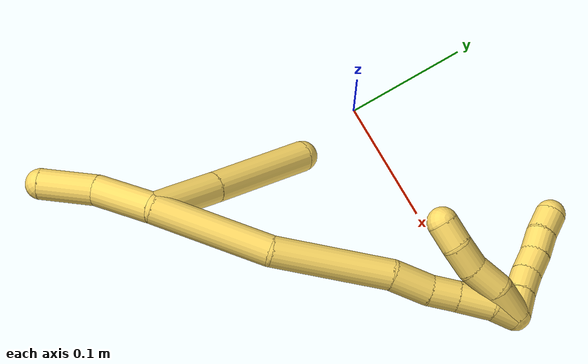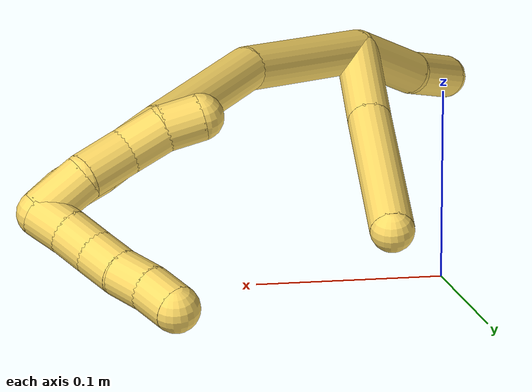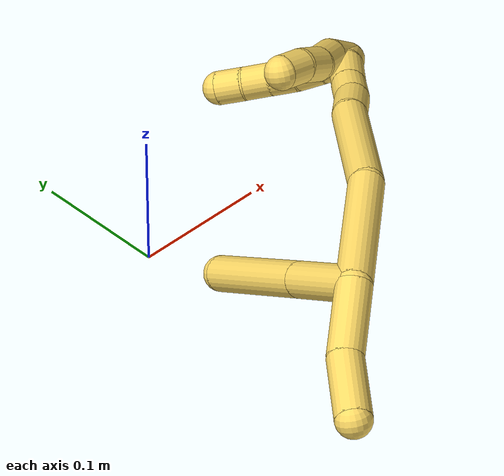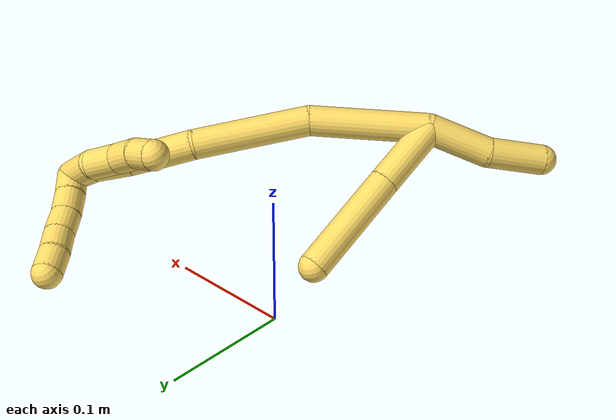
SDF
<sdf version="1.7">
 <world name="default">
  <model name="photoneo_s_sensor">
   <static>1</static>
   <pose>0 0 2 1.57079 1.57079 3.14159</pose>
   <link name="link">
    <inertial><mass>0.1</mass></inertial>
    <sensor name="sensor" type="depth">
     <update_rate>30</update_rate>
     <camera>
      <horizontal_fov>1.22</horizontal_fov>
      <image><width>1920</width><height>1200</height><format>B8G8R8</format></image>
      <clip><near>0.1</near><far>4</far></clip>
      <depth_camera><output>points</output></depth_camera>
     </camera>
     <plugin name="camera_plugin" filename="libgazebo_ros_depth_camera.so">
      <baseline>0.2</baseline>
      <alwaysOn>1</alwaysOn>
      <updateRate>0.0</updateRate>
      <cameraName>camera_ir</cameraName>
      <imageTopicName>/camera/color/image_raw</imageTopicName>
      <cameraInfoTopicName>/camera/color/camera_info</cameraInfoTopicName>
      <depthImageTopicName>/camera/depth/image_raw</depthImageTopicName>
      <depthImageCameraInfoTopicName>/camera/depth/camera_info</depthImageCameraInfoTopicName>
      <pointCloudTopicName>/camera/depth/points</pointCloudTopicName>
      <frameName>fr_optical</frameName>
      <pointCloudCutoff>0.1</pointCloudCutoff>
      <pointCloudCutoffMax>2.0</pointCloudCutoffMax>
      <distortionK1>0</distortionK1>
      <distortionK2>0</distortionK2>
      <distortionK3>0</distortionK3>
      <distortionT1>0</distortionT1>
      <distortionT2>0</distortionT2>
      <CxPrime>0</CxPrime>
      <Cx>0</Cx>
      <Cy>0</Cy>
      <focalLength>0</focalLength>
      <hackBaseline>0</hackBaseline>
     </plugin>
    </sensor>
   </link>
  </model>
  <model name="bin">
   <static>1</static>
   <link name="bottom">
    <collision name="collision-bottom">
     <pose>0 0 -0.01 0 -0 0</pose>
     <geometry><box><size>0.8 0.6 0.02</size></box></geometry>
     <surface>
      <friction><ode><mu>100</mu><mu2>100</mu2></ode></friction>
      <contact><collide_bitmask>65535</collide_bitmask></contact>
     </surface>
    </collision>
   </link>
   <link name="west_wall">
    <collision name="collision-west_wall">
     <pose>-0.41 0 0.1 0 -0 0</pose>
     <geometry><box><size>0.02 0.6 0.2</size></box></geometry>
     <surface>
      <friction><ode><mu>100</mu><mu2>100</mu2></ode></friction>
      <contact><collide_bitmask>65535</collide_bitmask></contact>
     </surface>
    </collision>
   </link>
   <link name="east_wall">
    <collision name="collision-east_wall">
     <pose>0.41 0 0.1 0 -0 0</pose>
     <geometry><box><size>0.02 0.6 0.2</size></box></geometry>
     <surface>
      <friction><ode><mu>100</mu><mu2>100</mu2></ode></friction>
      <contact><collide_bitmask>65535</collide_bitmask></contact>
     </surface>
    </collision>
   </link>
   <link name="south_wall">
    <collision name="collision-south_wall">
     <pose>0 -0.31 0.1 0 -0 0</pose>
     <geometry><box><size>0.8 0.02 0.2</size></box></geometry>
     <surface>
      <friction><ode><mu>100</mu><mu2>100</mu2></ode></friction>
      <contact><collide_bitmask>65535</collide_bitmask></contact>
     </surface>
    </collision>
   </link>
   <link name="north_wall">
    <collision name="collision-north_wall">
     <pose>0 0.31 0.1 0 -0 0</pose>
     <geometry><box><size>0.8 0.02 0.2</size></box></geometry>
     <surface>
      <friction><ode><mu>100</mu><mu2>100</mu2></ode></friction>
      <contact><collide_bitmask>65535</collide_bitmask></contact>
     </surface>
    </collision>
   </link>
  </model>
  <model name="5">
   <static>0</static>
   <link name="5">
    <collision name="collision-cylinder-e_1_2_8">
     <pose>0.00364 0.029299 -0.004065 -1.70866 0.122451 -0.140558</pose>
     <geometry><cylinder><radius>0.0125</radius><length>0.059606</length></cylinder></geometry>
     <surface>
      <friction><ode><mu>1.16</mu><mu2>1.16</mu2><slip1>0</slip1><slip2>0</slip2></ode></friction>
      <contact><ode><kp>1e+06</kp><kd>1</kd><max_vel>0</max_vel><min_depth>0.001</min_depth></ode></contact>
     </surface>
    </collision>
    <visual name="visual-cylinder-e_1_2_8">
     <pose>0.00364 0.029299 -0.004065 -1.70866 0.122451 -0.140558</pose>
     <geometry><cylinder><radius>0.0125</radius><length>0.059606</length></cylinder></geometry>
     <material><ambient>1 0.858824 0.4 1</ambient></material>
    </visual>
    <collision name="collision-cylinder-e_2_8_6">
     <pose>0.012185 0.103123 -0.014154 -1.70526 0.108718 -0.124377</pose>
     <geometry><cylinder><radius>0.0125</radius><length>0.090394</length></cylinder></geometry>
     <surface>
      <friction><ode><mu>1.16</mu><mu2>1.16</mu2><slip1>0</slip1><slip2>0</slip2></ode></friction>
      <contact><ode><kp>1e+06</kp><kd>1</kd><max_vel>0</max_vel><min_depth>0.001</min_depth></ode></contact>
     </surface>
    </collision>
    <visual name="visual-cylinder-e_2_8_6">
     <pose>0.012185 0.103123 -0.014154 -1.70526 0.108718 -0.124377</pose>
     <geometry><cylinder><radius>0.0125</radius><length>0.090394</length></cylinder></geometry>
     <material><ambient>1 0.858824 0.4 1</ambient></material>
    </visual>
    <collision name="collision-cylinder-e_1_2_9">
     <pose>-0.01816 -0.00926 -0.016632 2.63358 -0.761873 -1.99134</pose>
     <geometry><cylinder><radius>0.0125</radius><length>0.052617</length></cylinder></geometry>
     <surface>
      <friction><ode><mu>1.16</mu><mu2>1.16</mu2><slip1>0</slip1><slip2>0</slip2></ode></friction>
      <contact><ode><kp>1e+06</kp><kd>1</kd><max_vel>0</max_vel><min_depth>0.001</min_depth></ode></contact>
     </surface>
    </collision>
    <visual name="visual-cylinder-e_1_2_9">
     <pose>-0.01816 -0.00926 -0.016632 2.63358 -0.761873 -1.99134</pose>
     <geometry><cylinder><radius>0.0125</radius><length>0.052617</length></cylinder></geometry>
     <material><ambient>1 0.858824 0.4 1</ambient></material>
    </visual>
    <collision name="collision-cylinder-e_2_9_5">
     <pose>-0.050423 -0.032531 -0.04615 2.31443 -0.637584 -1.28956</pose>
     <geometry><cylinder><radius>0.0125</radius><length>0.047383</length></cylinder></geometry>
     <surface>
      <friction><ode><mu>1.16</mu><mu2>1.16</mu2><slip1>0</slip1><slip2>0</slip2></ode></friction>
      <contact><ode><kp>1e+06</kp><kd>1</kd><max_vel>0</max_vel><min_depth>0.001</min_depth></ode></contact>
     </surface>
    </collision>
    <visual name="visual-cylinder-e_2_9_5">
     <pose>-0.050423 -0.032531 -0.04615 2.31443 -0.637584 -1.28956</pose>
     <geometry><cylinder><radius>0.0125</radius><length>0.047383</length></cylinder></geometry>
     <material><ambient>1 0.858824 0.4 1</ambient></material>
    </visual>
    <collision name="collision-cylinder-e_1_2_10">
     <pose>0.037647 0.025899 0.0173 -0.98188 0.879625 -0.492883</pose>
     <geometry><cylinder><radius>0.0125</radius><length>0.097721</length></cylinder></geometry>
     <surface>
      <friction><ode><mu>1.16</mu><mu2>1.16</mu2><slip1>0</slip1><slip2>0</slip2></ode></friction>
      <contact><ode><kp>1e+06</kp><kd>1</kd><max_vel>0</max_vel><min_depth>0.001</min_depth></ode></contact>
     </surface>
    </collision>
    <visual name="visual-cylinder-e_1_2_10">
     <pose>0.037647 0.025899 0.0173 -0.98188 0.879625 -0.492883</pose>
     <geometry><cylinder><radius>0.0125</radius><length>0.097721</length></cylinder></geometry>
     <material><ambient>1 0.858824 0.4 1</ambient></material>
    </visual>
    <collision name="collision-cylinder-e_2_10_11">
     <pose>0.106613 0.087031 0.044126 -1.30674 0.709179 -0.552376</pose>
     <geometry><cylinder><radius>0.0125</radius><length>0.096188</length></cylinder></geometry>
     <surface>
      <friction><ode><mu>1.16</mu><mu2>1.16</mu2><slip1>0</slip1><slip2>0</slip2></ode></friction>
      <contact><ode><kp>1e+06</kp><kd>1</kd><max_vel>0</max_vel><min_depth>0.001</min_depth></ode></contact>
     </surface>
    </collision>
    <visual name="visual-cylinder-e_2_10_11">
     <pose>0.106613 0.087031 0.044126 -1.30674 0.709179 -0.552376</pose>
     <geometry><cylinder><radius>0.0125</radius><length>0.096188</length></cylinder></geometry>
     <material><ambient>1 0.858824 0.4 1</ambient></material>
    </visual>
    <collision name="collision-cylinder-e_3_11_12">
     <pose>0.150362 0.132812 0.054134 -1.52516 0.866599 -0.832321</pose>
     <geometry><cylinder><radius>0.0125</radius><length>0.032616</length></cylinder></geometry>
     <surface>
      <friction><ode><mu>1.16</mu><mu2>1.16</mu2><slip1>0</slip1><slip2>0</slip2></ode></friction>
      <contact><ode><kp>1e+06</kp><kd>1</kd><max_vel>0</max_vel><min_depth>0.001</min_depth></ode></contact>
     </surface>
    </collision>
    <visual name="visual-cylinder-e_3_11_12">
     <pose>0.150362 0.132812 0.054134 -1.52516 0.866599 -0.832321</pose>
     <geometry><cylinder><radius>0.0125</radius><length>0.032616</length></cylinder></geometry>
     <material><ambient>1 0.858824 0.4 1</ambient></material>
    </visual>
    <collision name="collision-cylinder-e_4_12_13">
     <pose>0.170458 0.151872 0.056326 -1.3725 0.723412 -0.601008</pose>
     <geometry><cylinder><radius>0.0125</radius><length>0.023168</length></cylinder></geometry>
     <surface>
      <friction><ode><mu>1.16</mu><mu2>1.16</mu2><slip1>0</slip1><slip2>0</slip2></ode></friction>
      <contact><ode><kp>1e+06</kp><kd>1</kd><max_vel>0</max_vel><min_depth>0.001</min_depth></ode></contact>
     </surface>
    </collision>
    <visual name="visual-cylinder-e_4_12_13">
     <pose>0.170458 0.151872 0.056326 -1.3725 0.723412 -0.601008</pose>
     <geometry><cylinder><radius>0.0125</radius><length>0.023168</length></cylinder></geometry>
     <material><ambient>1 0.858824 0.4 1</ambient></material>
    </visual>
    <collision name="collision-cylinder-e_5_13_14">
     <pose>0.188261 0.170692 0.060974 -1.29317 0.757472 -0.583617</pose>
     <geometry><cylinder><radius>0.0125</radius><length>0.029502</length></cylinder></geometry>
     <surface>
      <friction><ode><mu>1.16</mu><mu2>1.16</mu2><slip1>0</slip1><slip2>0</slip2></ode></friction>
      <contact><ode><kp>1e+06</kp><kd>1</kd><max_vel>0</max_vel><min_depth>0.001</min_depth></ode></contact>
     </surface>
    </collision>
    <visual name="visual-cylinder-e_5_13_14">
     <pose>0.188261 0.170692 0.060974 -1.29317 0.757472 -0.583617</pose>
     <geometry><cylinder><radius>0.0125</radius><length>0.029502</length></cylinder></geometry>
     <material><ambient>1 0.858824 0.4 1</ambient></material>
    </visual>
    <collision name="collision-cylinder-e_6_14_1">
     <pose>0.206168 0.187854 0.063002 -1.7027 0.843673 -0.946798</pose>
     <geometry><cylinder><radius>0.0125</radius><length>0.020805</length></cylinder></geometry>
     <surface>
      <friction><ode><mu>1.16</mu><mu2>1.16</mu2><slip1>0</slip1><slip2>0</slip2></ode></friction>
      <contact><ode><kp>1e+06</kp><kd>1</kd><max_vel>0</max_vel><min_depth>0.001</min_depth></ode></contact>
     </surface>
    </collision>
    <visual name="visual-cylinder-e_6_14_1">
     <pose>0.206168 0.187854 0.063002 -1.7027 0.843673 -0.946798</pose>
     <geometry><cylinder><radius>0.0125</radius><length>0.020805</length></cylinder></geometry>
     <material><ambient>1 0.858824 0.4 1</ambient></material>
    </visual>
    <collision name="collision-cylinder-e_1_1_15">
     <pose>0.207993 0.202565 0.060386 -1.78472 -0.636853 0.776393</pose>
     <geometry><cylinder><radius>0.0125</radius><length>0.02</length></cylinder></geometry>
     <surface>
      <friction><ode><mu>1.16</mu><mu2>1.16</mu2><slip1>0</slip1><slip2>0</slip2></ode></friction>
      <contact><ode><kp>1e+06</kp><kd>1</kd><max_vel>0</max_vel><min_depth>0.001</min_depth></ode></contact>
     </surface>
    </collision>
    <visual name="visual-cylinder-e_1_1_15">
     <pose>0.207993 0.202565 0.060386 -1.78472 -0.636853 0.776393</pose>
     <geometry><cylinder><radius>0.0125</radius><length>0.02</length></cylinder></geometry>
     <material><ambient>1 0.858824 0.4 1</ambient></material>
    </visual>
    <collision name="collision-cylinder-e_2_15_16">
     <pose>0.19675 0.218731 0.056977 -1.77277 -0.558208 0.675509</pose>
     <geometry><cylinder><radius>0.0125</radius><length>0.02</length></cylinder></geometry>
     <surface>
      <friction><ode><mu>1.16</mu><mu2>1.16</mu2><slip1>0</slip1><slip2>0</slip2></ode></friction>
      <contact><ode><kp>1e+06</kp><kd>1</kd><max_vel>0</max_vel><min_depth>0.001</min_depth></ode></contact>
     </surface>
    </collision>
    <visual name="visual-cylinder-e_2_15_16">
     <pose>0.19675 0.218731 0.056977 -1.77277 -0.558208 0.675509</pose>
     <geometry><cylinder><radius>0.0125</radius><length>0.02</length></cylinder></geometry>
     <material><ambient>1 0.858824 0.4 1</ambient></material>
    </visual>
    <collision name="collision-cylinder-e_3_16_17">
     <pose>0.186614 0.235759 0.054518 -1.65755 -0.505117 0.548778</pose>
     <geometry><cylinder><radius>0.0125</radius><length>0.02</length></cylinder></geometry>
     <surface>
      <friction><ode><mu>1.16</mu><mu2>1.16</mu2><slip1>0</slip1><slip2>0</slip2></ode></friction>
      <contact><ode><kp>1e+06</kp><kd>1</kd><max_vel>0</max_vel><min_depth>0.001</min_depth></ode></contact>
     </surface>
    </collision>
    <visual name="visual-cylinder-e_3_16_17">
     <pose>0.186614 0.235759 0.054518 -1.65755 -0.505117 0.548778</pose>
     <geometry><cylinder><radius>0.0125</radius><length>0.02</length></cylinder></geometry>
     <material><ambient>1 0.858824 0.4 1</ambient></material>
    </visual>
    <collision name="collision-cylinder-e_4_17_18">
     <pose>0.175846 0.252518 0.05333 -1.62417 -0.634687 0.667032</pose>
     <geometry><cylinder><radius>0.0125</radius><length>0.02</length></cylinder></geometry>
     <surface>
      <friction><ode><mu>1.16</mu><mu2>1.16</mu2><slip1>0</slip1><slip2>0</slip2></ode></friction>
      <contact><ode><kp>1e+06</kp><kd>1</kd><max_vel>0</max_vel><min_depth>0.001</min_depth></ode></contact>
     </surface>
    </collision>
    <visual name="visual-cylinder-e_4_17_18">
     <pose>0.175846 0.252518 0.05333 -1.62417 -0.634687 0.667032</pose>
     <geometry><cylinder><radius>0.0125</radius><length>0.02</length></cylinder></geometry>
     <material><ambient>1 0.858824 0.4 1</ambient></material>
    </visual>
    <collision name="collision-cylinder-e_5_18_4">
     <pose>0.165166 0.269329 0.052182 -1.65254 -0.495018 0.535319</pose>
     <geometry><cylinder><radius>0.0125</radius><length>0.02</length></cylinder></geometry>
     <surface>
      <friction><ode><mu>1.16</mu><mu2>1.16</mu2><slip1>0</slip1><slip2>0</slip2></ode></friction>
      <contact><ode><kp>1e+06</kp><kd>1</kd><max_vel>0</max_vel><min_depth>0.001</min_depth></ode></contact>
     </surface>
    </collision>
    <visual name="visual-cylinder-e_5_18_4">
     <pose>0.165166 0.269329 0.052182 -1.65254 -0.495018 0.535319</pose>
     <geometry><cylinder><radius>0.0125</radius><length>0.02</length></cylinder></geometry>
     <material><ambient>1 0.858824 0.4 1</ambient></material>
    </visual>
    <collision name="collision-cylinder-e_1_1_19">
     <pose>0.201378 0.190311 0.068101 0.631789 -1.03573 -0.368204</pose>
     <geometry><cylinder><radius>0.0125</radius><length>0.029206</length></cylinder></geometry>
     <surface>
      <friction><ode><mu>1.16</mu><mu2>1.16</mu2><slip1>0</slip1><slip2>0</slip2></ode></friction>
      <contact><ode><kp>1e+06</kp><kd>1</kd><max_vel>0</max_vel><min_depth>0.001</min_depth></ode></contact>
     </surface>
    </collision>
    <visual name="visual-cylinder-e_1_1_19">
     <pose>0.201378 0.190311 0.068101 0.631789 -1.03573 -0.368204</pose>
     <geometry><cylinder><radius>0.0125</radius><length>0.029206</length></cylinder></geometry>
     <material><ambient>1 0.858824 0.4 1</ambient></material>
    </visual>
    <collision name="collision-cylinder-e_2_19_20">
     <pose>0.176941 0.179914 0.075699 1.31185 -1.08925 -0.872433</pose>
     <geometry><cylinder><radius>0.0125</radius><length>0.026797</length></cylinder></geometry>
     <surface>
      <friction><ode><mu>1.16</mu><mu2>1.16</mu2><slip1>0</slip1><slip2>0</slip2></ode></friction>
      <contact><ode><kp>1e+06</kp><kd>1</kd><max_vel>0</max_vel><min_depth>0.001</min_depth></ode></contact>
     </surface>
    </collision>
    <visual name="visual-cylinder-e_2_19_20">
     <pose>0.176941 0.179914 0.075699 1.31185 -1.08925 -0.872433</pose>
     <geometry><cylinder><radius>0.0125</radius><length>0.026797</length></cylinder></geometry>
     <material><ambient>1 0.858824 0.4 1</ambient></material>
    </visual>
    <collision name="collision-cylinder-e_3_20_21">
     <pose>0.154299 0.17107 0.080644 0.70332 -1.18288 -0.483238</pose>
     <geometry><cylinder><radius>0.0125</radius><length>0.023264</length></cylinder></geometry>
     <surface>
      <friction><ode><mu>1.16</mu><mu2>1.16</mu2><slip1>0</slip1><slip2>0</slip2></ode></friction>
      <contact><ode><kp>1e+06</kp><kd>1</kd><max_vel>0</max_vel><min_depth>0.001</min_depth></ode></contact>
     </surface>
    </collision>
    <visual name="visual-cylinder-e_3_20_21">
     <pose>0.154299 0.17107 0.080644 0.70332 -1.18288 -0.483238</pose>
     <geometry><cylinder><radius>0.0125</radius><length>0.023264</length></cylinder></geometry>
     <material><ambient>1 0.858824 0.4 1</ambient></material>
    </visual>
    <collision name="collision-cylinder-e_4_21_3">
     <pose>0.133278 0.167227 0.085156 0.711806 -1.42293 -0.620244</pose>
     <geometry><cylinder><radius>0.0125</radius><length>0.020733</length></cylinder></geometry>
     <surface>
      <friction><ode><mu>1.16</mu><mu2>1.16</mu2><slip1>0</slip1><slip2>0</slip2></ode></friction>
      <contact><ode><kp>1e+06</kp><kd>1</kd><max_vel>0</max_vel><min_depth>0.001</min_depth></ode></contact>
     </surface>
    </collision>
    <visual name="visual-cylinder-e_4_21_3">
     <pose>0.133278 0.167227 0.085156 0.711806 -1.42293 -0.620244</pose>
     <geometry><cylinder><radius>0.0125</radius><length>0.020733</length></cylinder></geometry>
     <material><ambient>1 0.858824 0.4 1</ambient></material>
    </visual>
    <collision name="collision-sphere-3">
     <pose>0.123024 0.166229 0.086313 0 -0 0</pose>
     <geometry><sphere><radius>0.0125</radius></sphere></geometry>
     <surface>
      <friction><ode><mu>1.16</mu><mu2>1.16</mu2><slip1>0</slip1><slip2>0</slip2></ode></friction>
      <contact><ode><kp>1e+06</kp><kd>1</kd><max_vel>0</max_vel><min_depth>0.001</min_depth></ode></contact>
     </surface>
    </collision>
    <visual name="visual-sphere-3">
     <pose>0.123024 0.166229 0.086313 0 -0 0</pose>
     <geometry><sphere><radius>0.0125</radius></sphere></geometry>
     <material><ambient>1 0.858824 0.4 1</ambient></material>
    </visual>
    <collision name="collision-sphere-21">
     <pose>0.143531 0.168225 0.084 0 -0 0</pose>
     <geometry><sphere><radius>0.0125</radius></sphere></geometry>
     <surface>
      <friction><ode><mu>1.16</mu><mu2>1.16</mu2><slip1>0</slip1><slip2>0</slip2></ode></friction>
      <contact><ode><kp>1e+06</kp><kd>1</kd><max_vel>0</max_vel><min_depth>0.001</min_depth></ode></contact>
     </surface>
    </collision>
    <visual name="visual-sphere-21">
     <pose>0.143531 0.168225 0.084 0 -0 0</pose>
     <geometry><sphere><radius>0.0125</radius></sphere></geometry>
     <material><ambient>1 0.858824 0.4 1</ambient></material>
    </visual>
    <collision name="collision-sphere-20">
     <pose>0.165066 0.173916 0.077288 0 -0 0</pose>
     <geometry><sphere><radius>0.0125</radius></sphere></geometry>
     <surface>
      <friction><ode><mu>1.16</mu><mu2>1.16</mu2><slip1>0</slip1><slip2>0</slip2></ode></friction>
      <contact><ode><kp>1e+06</kp><kd>1</kd><max_vel>0</max_vel><min_depth>0.001</min_depth></ode></contact>
     </surface>
    </collision>
    <visual name="visual-sphere-20">
     <pose>0.165066 0.173916 0.077288 0 -0 0</pose>
     <geometry><sphere><radius>0.0125</radius></sphere></geometry>
     <material><ambient>1 0.858824 0.4 1</ambient></material>
    </visual>
    <collision name="collision-sphere-19">
     <pose>0.188815 0.185913 0.07411 0 -0 0</pose>
     <geometry><sphere><radius>0.0125</radius></sphere></geometry>
     <surface>
      <friction><ode><mu>1.16</mu><mu2>1.16</mu2><slip1>0</slip1><slip2>0</slip2></ode></friction>
      <contact><ode><kp>1e+06</kp><kd>1</kd><max_vel>0</max_vel><min_depth>0.001</min_depth></ode></contact>
     </surface>
    </collision>
    <visual name="visual-sphere-19">
     <pose>0.188815 0.185913 0.07411 0 -0 0</pose>
     <geometry><sphere><radius>0.0125</radius></sphere></geometry>
     <material><ambient>1 0.858824 0.4 1</ambient></material>
    </visual>
    <collision name="collision-sphere-10">
     <pose>0.075294 0.051798 0.0346 0 -0 0</pose>
     <geometry><sphere><radius>0.0125</radius></sphere></geometry>
     <surface>
      <friction><ode><mu>1.16</mu><mu2>1.16</mu2><slip1>0</slip1><slip2>0</slip2></ode></friction>
      <contact><ode><kp>1e+06</kp><kd>1</kd><max_vel>0</max_vel><min_depth>0.001</min_depth></ode></contact>
     </surface>
    </collision>
    <visual name="visual-sphere-10">
     <pose>0.075294 0.051798 0.0346 0 -0 0</pose>
     <geometry><sphere><radius>0.0125</radius></sphere></geometry>
     <material><ambient>1 0.858824 0.4 1</ambient></material>
    </visual>
    <collision name="collision-sphere-5">
     <pose>-0.064525 -0.046542 -0.059038 0 -0 0</pose>
     <geometry><sphere><radius>0.0125</radius></sphere></geometry>
     <surface>
      <friction><ode><mu>1.16</mu><mu2>1.16</mu2><slip1>0</slip1><slip2>0</slip2></ode></friction>
      <contact><ode><kp>1e+06</kp><kd>1</kd><max_vel>0</max_vel><min_depth>0.001</min_depth></ode></contact>
     </surface>
    </collision>
    <visual name="visual-sphere-5">
     <pose>-0.064525 -0.046542 -0.059038 0 -0 0</pose>
     <geometry><sphere><radius>0.0125</radius></sphere></geometry>
     <material><ambient>1 0.858824 0.4 1</ambient></material>
    </visual>
    <collision name="collision-sphere-6">
     <pose>0.017089 0.147648 -0.020177 0 -0 0</pose>
     <geometry><sphere><radius>0.0125</radius></sphere></geometry>
     <surface>
      <friction><ode><mu>1.16</mu><mu2>1.16</mu2><slip1>0</slip1><slip2>0</slip2></ode></friction>
      <contact><ode><kp>1e+06</kp><kd>1</kd><max_vel>0</max_vel><min_depth>0.001</min_depth></ode></contact>
     </surface>
    </collision>
    <visual name="visual-sphere-6">
     <pose>0.017089 0.147648 -0.020177 0 -0 0</pose>
     <geometry><sphere><radius>0.0125</radius></sphere></geometry>
     <material><ambient>1 0.858824 0.4 1</ambient></material>
    </visual>
    <collision name="collision-sphere-9">
     <pose>-0.036321 -0.018519 -0.033263 0 -0 0</pose>
     <geometry><sphere><radius>0.0125</radius></sphere></geometry>
     <surface>
      <friction><ode><mu>1.16</mu><mu2>1.16</mu2><slip1>0</slip1><slip2>0</slip2></ode></friction>
      <contact><ode><kp>1e+06</kp><kd>1</kd><max_vel>0</max_vel><min_depth>0.001</min_depth></ode></contact>
     </surface>
    </collision>
    <visual name="visual-sphere-9">
     <pose>-0.036321 -0.018519 -0.033263 0 -0 0</pose>
     <geometry><sphere><radius>0.0125</radius></sphere></geometry>
     <material><ambient>1 0.858824 0.4 1</ambient></material>
    </visual>
    <collision name="collision-sphere-2">
     <geometry><sphere><radius>0.0125</radius></sphere></geometry>
     <surface>
      <friction><ode><mu>1.16</mu><mu2>1.16</mu2><slip1>0</slip1><slip2>0</slip2></ode></friction>
      <contact><ode><kp>1e+06</kp><kd>1</kd><max_vel>0</max_vel><min_depth>0.001</min_depth></ode></contact>
     </surface>
    </collision>
    <visual name="visual-sphere-2">
     <geometry><sphere><radius>0.0125</radius></sphere></geometry>
     <material><ambient>1 0.858824 0.4 1</ambient></material>
    </visual>
    <collision name="collision-sphere-8">
     <pose>0.007281 0.058599 -0.00813 0 -0 0</pose>
     <geometry><sphere><radius>0.0125</radius></sphere></geometry>
     <surface>
      <friction><ode><mu>1.16</mu><mu2>1.16</mu2><slip1>0</slip1><slip2>0</slip2></ode></friction>
      <contact><ode><kp>1e+06</kp><kd>1</kd><max_vel>0</max_vel><min_depth>0.001</min_depth></ode></contact>
     </surface>
    </collision>
    <visual name="visual-sphere-8">
     <pose>0.007281 0.058599 -0.00813 0 -0 0</pose>
     <geometry><sphere><radius>0.0125</radius></sphere></geometry>
     <material><ambient>1 0.858824 0.4 1</ambient></material>
    </visual>
    <collision name="collision-sphere-11">
     <pose>0.137933 0.122265 0.053652 0 -0 0</pose>
     <geometry><sphere><radius>0.0125</radius></sphere></geometry>
     <surface>
      <friction><ode><mu>1.16</mu><mu2>1.16</mu2><slip1>0</slip1><slip2>0</slip2></ode></friction>
      <contact><ode><kp>1e+06</kp><kd>1</kd><max_vel>0</max_vel><min_depth>0.001</min_depth></ode></contact>
     </surface>
    </collision>
    <visual name="visual-sphere-11">
     <pose>0.137933 0.122265 0.053652 0 -0 0</pose>
     <geometry><sphere><radius>0.0125</radius></sphere></geometry>
     <material><ambient>1 0.858824 0.4 1</ambient></material>
    </visual>
    <collision name="collision-sphere-12">
     <pose>0.16279 0.143359 0.054616 0 -0 0</pose>
     <geometry><sphere><radius>0.0125</radius></sphere></geometry>
     <surface>
      <friction><ode><mu>1.16</mu><mu2>1.16</mu2><slip1>0</slip1><slip2>0</slip2></ode></friction>
      <contact><ode><kp>1e+06</kp><kd>1</kd><max_vel>0</max_vel><min_depth>0.001</min_depth></ode></contact>
     </surface>
    </collision>
    <visual name="visual-sphere-12">
     <pose>0.16279 0.143359 0.054616 0 -0 0</pose>
     <geometry><sphere><radius>0.0125</radius></sphere></geometry>
     <material><ambient>1 0.858824 0.4 1</ambient></material>
    </visual>
    <collision name="collision-sphere-13">
     <pose>0.178126 0.160384 0.058037 0 -0 0</pose>
     <geometry><sphere><radius>0.0125</radius></sphere></geometry>
     <surface>
      <friction><ode><mu>1.16</mu><mu2>1.16</mu2><slip1>0</slip1><slip2>0</slip2></ode></friction>
      <contact><ode><kp>1e+06</kp><kd>1</kd><max_vel>0</max_vel><min_depth>0.001</min_depth></ode></contact>
     </surface>
    </collision>
    <visual name="visual-sphere-13">
     <pose>0.178126 0.160384 0.058037 0 -0 0</pose>
     <geometry><sphere><radius>0.0125</radius></sphere></geometry>
     <material><ambient>1 0.858824 0.4 1</ambient></material>
    </visual>
    <collision name="collision-sphere-14">
     <pose>0.198397 0.180999 0.063911 0 -0 0</pose>
     <geometry><sphere><radius>0.0125</radius></sphere></geometry>
     <surface>
      <friction><ode><mu>1.16</mu><mu2>1.16</mu2><slip1>0</slip1><slip2>0</slip2></ode></friction>
      <contact><ode><kp>1e+06</kp><kd>1</kd><max_vel>0</max_vel><min_depth>0.001</min_depth></ode></contact>
     </surface>
    </collision>
    <visual name="visual-sphere-14">
     <pose>0.198397 0.180999 0.063911 0 -0 0</pose>
     <geometry><sphere><radius>0.0125</radius></sphere></geometry>
     <material><ambient>1 0.858824 0.4 1</ambient></material>
    </visual>
    <collision name="collision-sphere-1">
     <pose>0.21394 0.194708 0.062093 0 -0 0</pose>
     <geometry><sphere><radius>0.0125</radius></sphere></geometry>
     <surface>
      <friction><ode><mu>1.16</mu><mu2>1.16</mu2><slip1>0</slip1><slip2>0</slip2></ode></friction>
      <contact><ode><kp>1e+06</kp><kd>1</kd><max_vel>0</max_vel><min_depth>0.001</min_depth></ode></contact>
     </surface>
    </collision>
    <visual name="visual-sphere-1">
     <pose>0.21394 0.194708 0.062093 0 -0 0</pose>
     <geometry><sphere><radius>0.0125</radius></sphere></geometry>
     <material><ambient>1 0.858824 0.4 1</ambient></material>
    </visual>
    <collision name="collision-sphere-18">
     <pose>0.169917 0.260559 0.0529 0 -0 0</pose>
     <geometry><sphere><radius>0.0125</radius></sphere></geometry>
     <surface>
      <friction><ode><mu>1.16</mu><mu2>1.16</mu2><slip1>0</slip1><slip2>0</slip2></ode></friction>
      <contact><ode><kp>1e+06</kp><kd>1</kd><max_vel>0</max_vel><min_depth>0.001</min_depth></ode></contact>
     </surface>
    </collision>
    <visual name="visual-sphere-18">
     <pose>0.169917 0.260559 0.0529 0 -0 0</pose>
     <geometry><sphere><radius>0.0125</radius></sphere></geometry>
     <material><ambient>1 0.858824 0.4 1</ambient></material>
    </visual>
    <collision name="collision-sphere-15">
     <pose>0.202047 0.210421 0.058679 0 -0 0</pose>
     <geometry><sphere><radius>0.0125</radius></sphere></geometry>
     <surface>
      <friction><ode><mu>1.16</mu><mu2>1.16</mu2><slip1>0</slip1><slip2>0</slip2></ode></friction>
      <contact><ode><kp>1e+06</kp><kd>1</kd><max_vel>0</max_vel><min_depth>0.001</min_depth></ode></contact>
     </surface>
    </collision>
    <visual name="visual-sphere-15">
     <pose>0.202047 0.210421 0.058679 0 -0 0</pose>
     <geometry><sphere><radius>0.0125</radius></sphere></geometry>
     <material><ambient>1 0.858824 0.4 1</ambient></material>
    </visual>
    <collision name="collision-sphere-16">
     <pose>0.191453 0.227041 0.055276 0 -0 0</pose>
     <geometry><sphere><radius>0.0125</radius></sphere></geometry>
     <surface>
      <friction><ode><mu>1.16</mu><mu2>1.16</mu2><slip1>0</slip1><slip2>0</slip2></ode></friction>
      <contact><ode><kp>1e+06</kp><kd>1</kd><max_vel>0</max_vel><min_depth>0.001</min_depth></ode></contact>
     </surface>
    </collision>
    <visual name="visual-sphere-16">
     <pose>0.191453 0.227041 0.055276 0 -0 0</pose>
     <geometry><sphere><radius>0.0125</radius></sphere></geometry>
     <material><ambient>1 0.858824 0.4 1</ambient></material>
    </visual>
    <collision name="collision-sphere-17">
     <pose>0.181775 0.244477 0.053759 0 -0 0</pose>
     <geometry><sphere><radius>0.0125</radius></sphere></geometry>
     <surface>
      <friction><ode><mu>1.16</mu><mu2>1.16</mu2><slip1>0</slip1><slip2>0</slip2></ode></friction>
      <contact><ode><kp>1e+06</kp><kd>1</kd><max_vel>0</max_vel><min_depth>0.001</min_depth></ode></contact>
     </surface>
    </collision>
    <visual name="visual-sphere-17">
     <pose>0.181775 0.244477 0.053759 0 -0 0</pose>
     <geometry><sphere><radius>0.0125</radius></sphere></geometry>
     <material><ambient>1 0.858824 0.4 1</ambient></material>
    </visual>
    <collision name="collision-sphere-4">
     <pose>0.160416 0.2781 0.051463 0 -0 0</pose>
     <geometry><sphere><radius>0.0125</radius></sphere></geometry>
     <surface>
      <friction><ode><mu>1.16</mu><mu2>1.16</mu2><slip1>0</slip1><slip2>0</slip2></ode></friction>
      <contact><ode><kp>1e+06</kp><kd>1</kd><max_vel>0</max_vel><min_depth>0.001</min_depth></ode></contact>
     </surface>
    </collision>
    <visual name="visual-sphere-4">
     <pose>0.160416 0.2781 0.051463 0 -0 0</pose>
     <geometry><sphere><radius>0.0125</radius></sphere></geometry>
     <material><ambient>1 0.858824 0.4 1</ambient></material>
    </visual>
    <inertial>
     <pose>0.088303 0.104187 0.027652 0 -0 0</pose>
     <mass>0.75</mass>
     <inertia>
      <ixx>0.000106</ixx>
      <ixy>0</ixy>
      <ixz>0</ixz>
      <iyy>6.6e-05</iyy>
      <iyz>0</iyz>
      <izz>-0.000286</izz>
     </inertia>
    </inertial>
   </link>
   <pose>0.006213 -0.187109 0.088165 -0.384962 0.11777 0.005516</pose>
  </model>
 </world>
</sdf>
